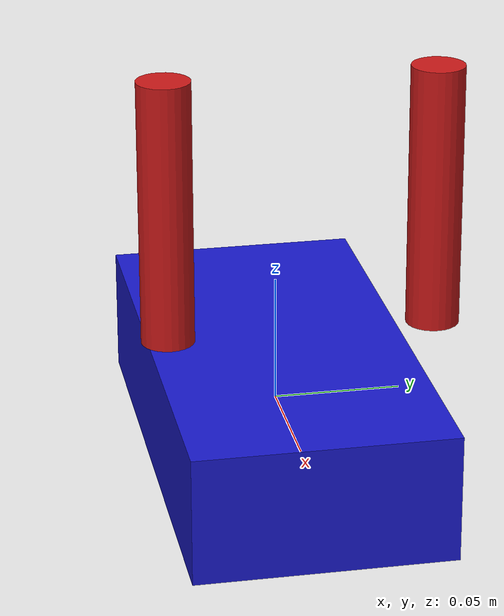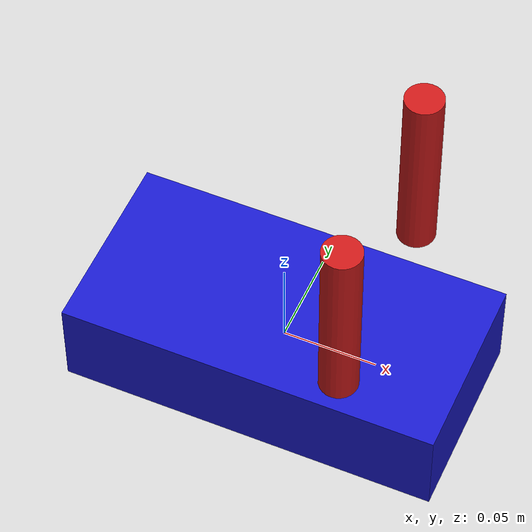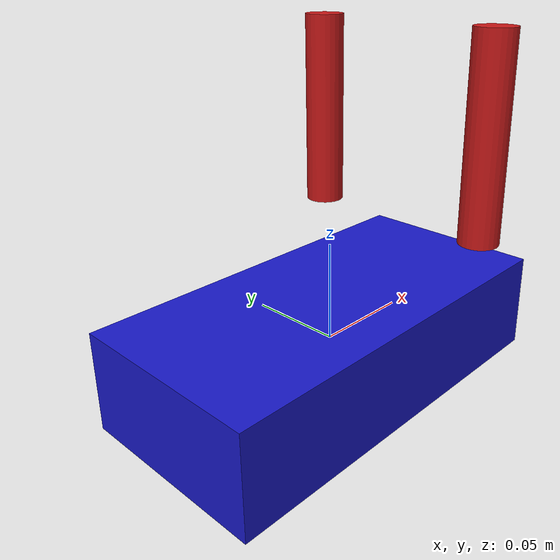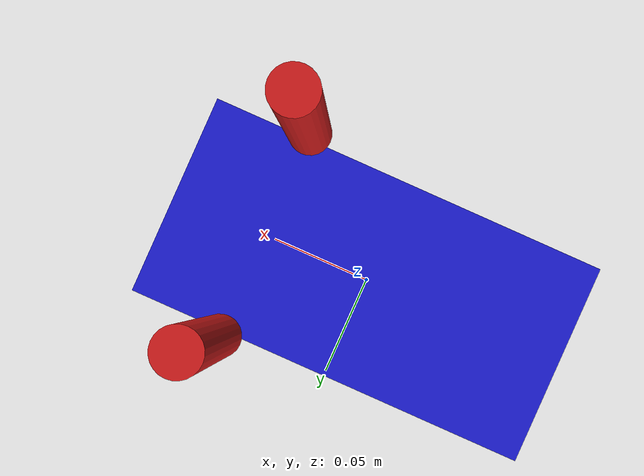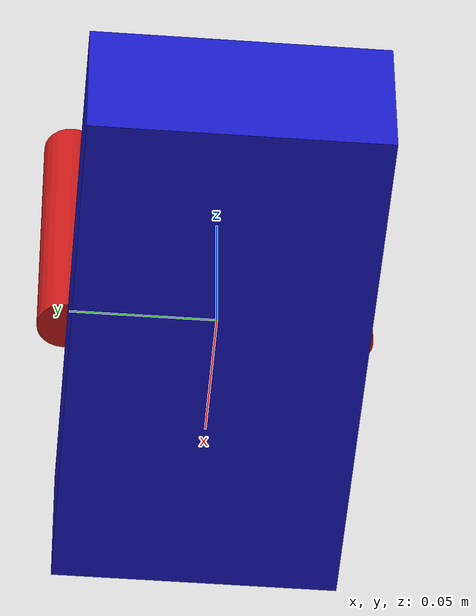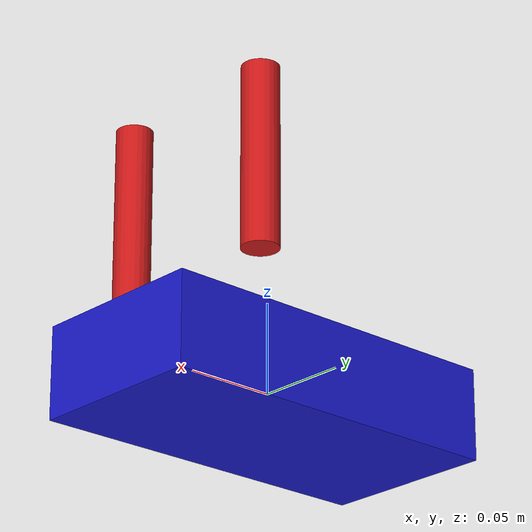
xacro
<?xml version="1.0"?>
<robot name="gnss_imu_sensor" xmlns:xacro="http://www.ros.org/wiki/xacro">

  <!-- 더미 루트 링크 (관성 없음) -->
  <link name="dummy_base">
    <visual>
      <geometry>
        <box size="0.001 0.001 0.001"/>
      </geometry>
      <material name="dummy_material">
         <color rgba="0 0 0 0"/>
      </material>
    </visual>
  </link>

  <!-- 더미 루트와 GNSS 본체를 연결하는 고정 조인트 -->
  <joint name="base_to_body" type="fixed">
    <parent link="dummy_base"/>
    <child link="gnss_body"/>
    <origin xyz="0 0 0" rpy="0 0 0"/>
    <gazebo>
      <disable_ros_transmission>true</disable_ros_transmission>
    </gazebo>
  </joint>

  <!-- GNSS 본체 링크 -->
  <link name="gnss_body">
    <inertial>
      <mass value="1.0"/>
      <origin xyz="0 0 0" rpy="0 0 0"/>
      <inertia ixx="0.01" ixy="0" ixz="0" iyy="0.01" iyz="0" izz="0.01"/>
    </inertial>
    <visual>
      <geometry>
         <box size="0.2 0.1 0.05"/>
      </geometry>
      <material name="gnss_body_material">
         <color rgba="0.1 0.1 0.8 1"/>
      </material>
    </visual>
    <collision>
      <geometry>
         <box size="0.2 0.1 0.05"/>
      </geometry>
    </collision>
  </link>

  <!-- 왼쪽 안테나 -->
  <joint name="antenna1_joint" type="fixed">
    <parent link="gnss_body"/>
    <child link="gnss_antenna_left"/>
    <origin xyz="0.05 0.05 0.1" rpy="0 0 0"/>
    <gazebo>
      <disable_ros_transmission>true</disable_ros_transmission>
    </gazebo>
  </joint>
  <link name="gnss_antenna_left">
    <inertial>
      <mass value="0.1"/>
      <origin xyz="0 0 0" rpy="0 0 0"/>
      <inertia ixx="0.001" ixy="0" ixz="0" iyy="0.001" iyz="0" izz="0.001"/>
    </inertial>
    <visual>
      <geometry>
         <cylinder radius="0.01" length="0.1"/>
      </geometry>
      <material name="gnss_antenna_left_material">
         <color rgba="0.8 0.1 0.1 1"/>
      </material>
    </visual>
  </link>

  <!-- 오른쪽 안테나 -->
  <joint name="antenna2_joint" type="fixed">
    <parent link="gnss_body"/>
    <child link="gnss_antenna_right"/>
    <origin xyz="0.05 -0.05 0.1" rpy="0 0 0"/>
    <gazebo>
      <disable_ros_transmission>true</disable_ros_transmission>
    </gazebo>
  </joint>
  <link name="gnss_antenna_right">
    <inertial>
      <mass value="0.1"/>
      <origin xyz="0 0 0" rpy="0 0 0"/>
      <inertia ixx="0.001" ixy="0" ixz="0" iyy="0.001" iyz="0" izz="0.001"/>
    </inertial>
    <visual>
      <geometry>
         <cylinder radius="0.01" length="0.1"/>
      </geometry>
      <material name="gnss_antenna_right_material">
         <color rgba="0.8 0.1 0.1 1"/>
      </material>
    </visual>
  </link>

  <!-- Gazebo 플러그인: 왼쪽 GNSS 센서 (GPS/속도 데이터) -->
  <gazebo reference="gnss_antenna_left">
    <sensor type="gps" name="gnss_sensor_left">
      <always_on>true</always_on>
      <update_rate>5</update_rate>
      <topic>/gnss/left/gazebo_ros_gps/out</topic>
      <plugin name="gazebo_ros_gps_sensor" filename="libgazebo_ros_gps_sensor.so">
         <ros>
            <namespace>/gnss/left/gazebo_ros_gps</namespace>
            <parameter name="reference_lat" value="37.4275"/>
            <parameter name="reference_long" value="-122.1697"/>
            <parameter name="reference_alt" value="30.0"/>
         </ros>
         <frame_id>gnss_antenna_left</frame_id>
      </plugin>
    </sensor>
  </gazebo>

  <!-- Gazebo 플러그인: 오른쪽 GNSS 센서 (GPS/속도 데이터) -->
  <gazebo reference="gnss_antenna_right">
    <sensor type="gps" name="gnss_sensor_right">
      <always_on>true</always_on>
      <update_rate>5</update_rate>
      <topic>/gnss/right/gazebo_ros_gps/out</topic>
      <plugin name="gazebo_ros_gps_sensor" filename="libgazebo_ros_gps_sensor.so">
         <ros>
            <namespace>/gnss/right/gazebo_ros_gps</namespace>
            <parameter name="reference_lat" value="37.4275"/>
            <parameter name="reference_long" value="-122.1697"/>
            <parameter name="reference_alt" value="30.0"/>
         </ros>
         <frame_id>gnss_antenna_right</frame_id>
      </plugin>
    </sensor>
  </gazebo>

  <!-- Gazebo 플러그인: IMU 센서 (GNSS 본체에 부착) -->
  <gazebo reference="gnss_body">
    <sensor type="imu" name="gnss_imu_sensor">
      <always_on>true</always_on>
      <update_rate>50</update_rate>
      <imu>
        <angular_velocity>
          <noise type="gaussian">
            <mean>0.0</mean>
            <stddev>0.01</stddev>
          </noise>
        </angular_velocity>
        <linear_acceleration>
          <noise type="gaussian">
            <mean>0.0</mean>
            <stddev>0.01</stddev>
          </noise>
        </linear_acceleration>
      </imu>
      <plugin name="gazebo_ros_imu_sensor" filename="libgazebo_ros_imu_sensor.so">
         <ros>
            <namespace>/gnss/imu</namespace>
            <remapping>~/out:=data</remapping>
         </ros>
         <frameName>gnss_body</frameName>
      </plugin>
    </sensor>
  </gazebo>

</robot>
